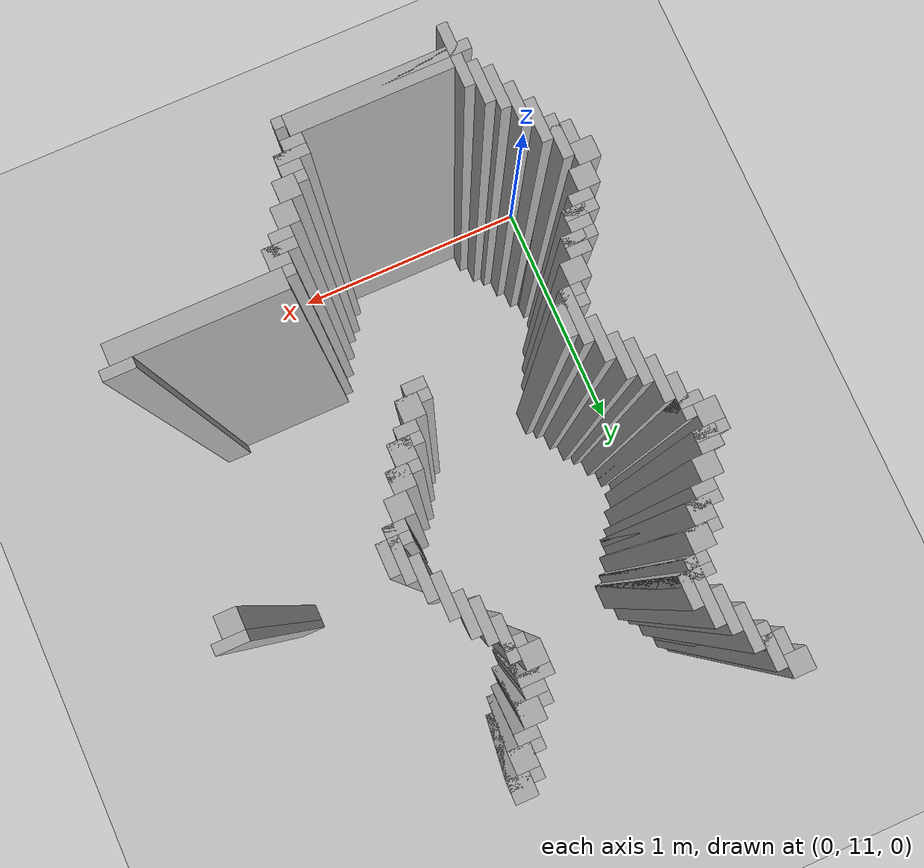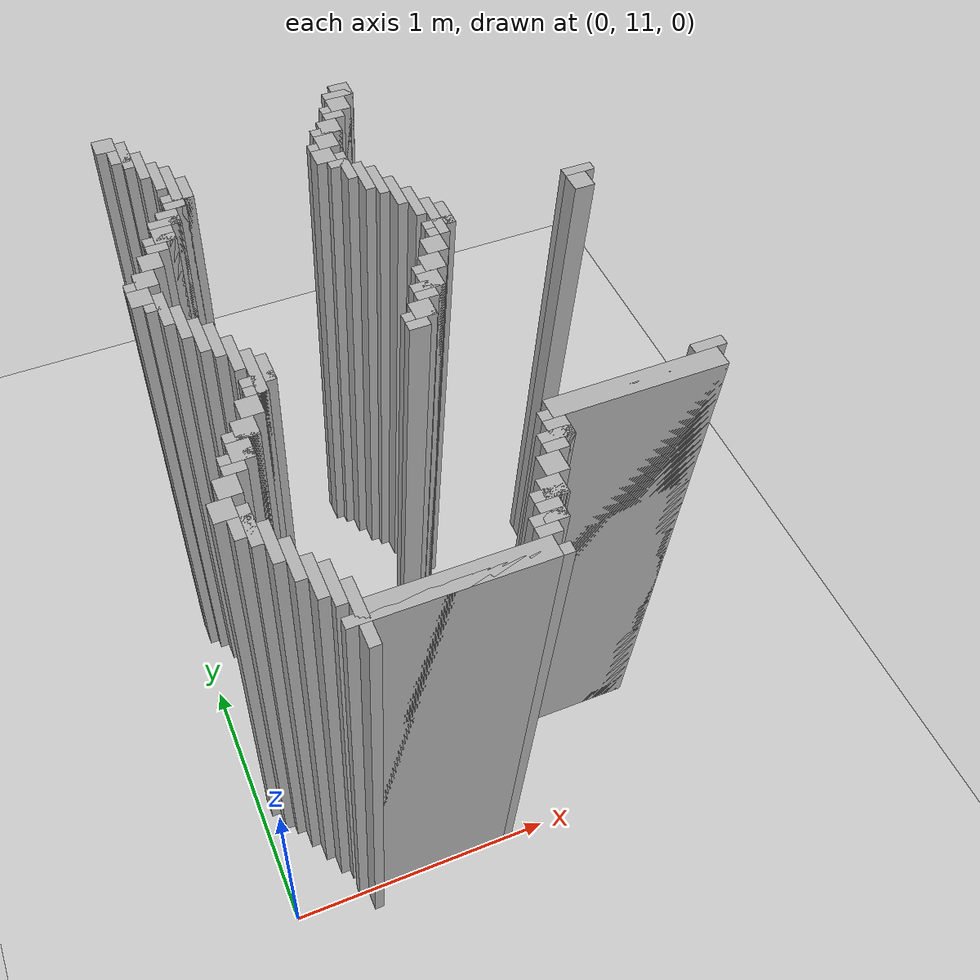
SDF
<sdf version="1.6">
 <world name="slam_world">
  <model name="ground_plane">
   <static>true</static>
   <link name="link">
    <collision name="collision">
     <geometry><plane><normal>0 0 1</normal><size>100 100</size></plane></geometry>
    </collision>
    <visual name="visual">
     <geometry><plane><normal>0 0 1</normal><size>100 100</size></plane></geometry>
     <material>
      <ambient>0.8 0.8 0.8 1</ambient>
      <diffuse>0.8 0.8 0.8 1</diffuse>
      <specular>0.8 0.8 0.8 1</specular>
     </material>
    </visual>
   </link>
  </model>
  <model name="wall_1461">
   <static>true</static>
   <pose>0.13921113689095127 13.016241299303944 1.0 0 0 0</pose>
   <link name="link">
    <collision name="collision">
     <geometry><box><size>0.06960556844547564 0.06960556844547564 2.0</size></box></geometry>
    </collision>
    <visual name="visual">
     <geometry><box><size>0.06960556844547564 0.06960556844547564 2.0</size></box></geometry>
     <material><ambient>0.5 0.5 0.5 1</ambient><diffuse>0.7 0.7 0.7 1</diffuse></material>
    </visual>
   </link>
  </model>
  <model name="wall_1462">
   <static>true</static>
   <pose>0.974477958236659 13.016241299303944 1.0 0 0 0</pose>
   <link name="link">
    <collision name="collision">
     <geometry><box><size>0.06960556844547564 0.06960556844547564 2.0</size></box></geometry>
    </collision>
    <visual name="visual">
     <geometry><box><size>0.06960556844547564 0.06960556844547564 2.0</size></box></geometry>
     <material><ambient>0.5 0.5 0.5 1</ambient><diffuse>0.7 0.7 0.7 1</diffuse></material>
    </visual>
   </link>
  </model>
  <model name="wall_1473">
   <static>true</static>
   <pose>0.191415313225058 12.946635730858468 1.0 0 0 0</pose>
   <link name="link">
    <collision name="collision">
     <geometry><box><size>0.03480278422273782 0.13921113689095127 2.0</size></box></geometry>
    </collision>
    <visual name="visual">
     <geometry><box><size>0.03480278422273782 0.13921113689095127 2.0</size></box></geometry>
     <material><ambient>0.5 0.5 0.5 1</ambient><diffuse>0.7 0.7 0.7 1</diffuse></material>
    </visual>
   </link>
  </model>
  <model name="wall_1474">
   <static>true</static>
   <pose>0.95707656612529 12.998839907192576 1.0 0 0 0</pose>
   <link name="link">
    <collision name="collision">
     <geometry><box><size>0.10440835266821345 0.03480278422273782 2.0</size></box></geometry>
    </collision>
    <visual name="visual">
     <geometry><box><size>0.10440835266821345 0.03480278422273782 2.0</size></box></geometry>
     <material><ambient>0.5 0.5 0.5 1</ambient><diffuse>0.7 0.7 0.7 1</diffuse></material>
    </visual>
   </link>
  </model>
  <model name="wall_1485">
   <static>true</static>
   <pose>0.17401392111368907 12.946635730858468 1.0 0 0 0</pose>
   <link name="link">
    <collision name="collision">
     <geometry><box><size>0.06960556844547564 0.06960556844547564 2.0</size></box></geometry>
    </collision>
    <visual name="visual">
     <geometry><box><size>0.06960556844547564 0.06960556844547564 2.0</size></box></geometry>
     <material><ambient>0.5 0.5 0.5 1</ambient><diffuse>0.7 0.7 0.7 1</diffuse></material>
    </visual>
   </link>
  </model>
  <model name="wall_1486">
   <static>true</static>
   <pose>0.9396751740139211 12.946635730858468 1.0 0 0 0</pose>
   <link name="link">
    <collision name="collision">
     <geometry><box><size>0.06960556844547564 0.06960556844547564 2.0</size></box></geometry>
    </collision>
    <visual name="visual">
     <geometry><box><size>0.06960556844547564 0.06960556844547564 2.0</size></box></geometry>
     <material><ambient>0.5 0.5 0.5 1</ambient><diffuse>0.7 0.7 0.7 1</diffuse></material>
    </visual>
   </link>
  </model>
  <model name="wall_1497">
   <static>true</static>
   <pose>0.2262180974477958 12.877030162412993 1.0 0 0 0</pose>
   <link name="link">
    <collision name="collision">
     <geometry><box><size>0.03480278422273782 0.13921113689095127 2.0</size></box></geometry>
    </collision>
    <visual name="visual">
     <geometry><box><size>0.03480278422273782 0.13921113689095127 2.0</size></box></geometry>
     <material><ambient>0.5 0.5 0.5 1</ambient><diffuse>0.7 0.7 0.7 1</diffuse></material>
    </visual>
   </link>
  </model>
  <model name="wall_1498">
   <static>true</static>
   <pose>0.9222737819025522 12.929234338747099 1.0 0 0 0</pose>
   <link name="link">
    <collision name="collision">
     <geometry><box><size>0.10440835266821345 0.03480278422273782 2.0</size></box></geometry>
    </collision>
    <visual name="visual">
     <geometry><box><size>0.10440835266821345 0.03480278422273782 2.0</size></box></geometry>
     <material><ambient>0.5 0.5 0.5 1</ambient><diffuse>0.7 0.7 0.7 1</diffuse></material>
    </visual>
   </link>
  </model>
  <model name="wall_1509">
   <static>true</static>
   <pose>0.9048723897911832 12.894431554524362 1.0 0 0 0</pose>
   <link name="link">
    <collision name="collision">
     <geometry><box><size>0.06960556844547564 0.03480278422273782 2.0</size></box></geometry>
    </collision>
    <visual name="visual">
     <geometry><box><size>0.06960556844547564 0.03480278422273782 2.0</size></box></geometry>
     <material><ambient>0.5 0.5 0.5 1</ambient><diffuse>0.7 0.7 0.7 1</diffuse></material>
    </visual>
   </link>
  </model>
  <model name="wall_1515">
   <static>true</static>
   <pose>0.2610208816705336 12.807424593967516 1.0 0 0 0</pose>
   <link name="link">
    <collision name="collision">
     <geometry><box><size>0.03480278422273782 0.13921113689095127 2.0</size></box></geometry>
    </collision>
    <visual name="visual">
     <geometry><box><size>0.03480278422273782 0.13921113689095127 2.0</size></box></geometry>
     <material><ambient>0.5 0.5 0.5 1</ambient><diffuse>0.7 0.7 0.7 1</diffuse></material>
    </visual>
   </link>
  </model>
  <model name="wall_1516">
   <static>true</static>
   <pose>0.8700696055684455 12.842227378190255 1.0 0 0 0</pose>
   <link name="link">
    <collision name="collision">
     <geometry><box><size>0.06960556844547564 0.06960556844547564 2.0</size></box></geometry>
    </collision>
    <visual name="visual">
     <geometry><box><size>0.06960556844547564 0.06960556844547564 2.0</size></box></geometry>
     <material><ambient>0.5 0.5 0.5 1</ambient><diffuse>0.7 0.7 0.7 1</diffuse></material>
    </visual>
   </link>
  </model>
  <model name="wall_1527">
   <static>true</static>
   <pose>0.29582366589327147 12.737819025522041 1.0 0 0 0</pose>
   <link name="link">
    <collision name="collision">
     <geometry><box><size>0.03480278422273782 0.2088167053364269 2.0</size></box></geometry>
    </collision>
    <visual name="visual">
     <geometry><box><size>0.03480278422273782 0.2088167053364269 2.0</size></box></geometry>
     <material><ambient>0.5 0.5 0.5 1</ambient><diffuse>0.7 0.7 0.7 1</diffuse></material>
    </visual>
   </link>
  </model>
  <model name="wall_1528">
   <static>true</static>
   <pose>0.8526682134570766 12.824825986078885 1.0 0 0 0</pose>
   <link name="link">
    <collision name="collision">
     <geometry><box><size>0.10440835266821345 0.03480278422273782 2.0</size></box></geometry>
    </collision>
    <visual name="visual">
     <geometry><box><size>0.10440835266821345 0.03480278422273782 2.0</size></box></geometry>
     <material><ambient>0.5 0.5 0.5 1</ambient><diffuse>0.7 0.7 0.7 1</diffuse></material>
    </visual>
   </link>
  </model>
  <model name="wall_1539">
   <static>true</static>
   <pose>0.8352668213457076 12.772621809744779 1.0 0 0 0</pose>
   <link name="link">
    <collision name="collision">
     <geometry><box><size>0.06960556844547564 0.06960556844547564 2.0</size></box></geometry>
    </collision>
    <visual name="visual">
     <geometry><box><size>0.06960556844547564 0.06960556844547564 2.0</size></box></geometry>
     <material><ambient>0.5 0.5 0.5 1</ambient><diffuse>0.7 0.7 0.7 1</diffuse></material>
    </visual>
   </link>
  </model>
  <model name="wall_1545">
   <static>true</static>
   <pose>0.3306264501160093 12.720417633410673 1.0 0 0 0</pose>
   <link name="link">
    <collision name="collision">
     <geometry><box><size>0.03480278422273782 0.10440835266821345 2.0</size></box></geometry>
    </collision>
    <visual name="visual">
     <geometry><box><size>0.03480278422273782 0.10440835266821345 2.0</size></box></geometry>
     <material><ambient>0.5 0.5 0.5 1</ambient><diffuse>0.7 0.7 0.7 1</diffuse></material>
    </visual>
   </link>
  </model>
  <model name="wall_1546">
   <static>true</static>
   <pose>0.8178654292343387 12.75522041763341 1.0 0 0 0</pose>
   <link name="link">
    <collision name="collision">
     <geometry><box><size>0.10440835266821345 0.03480278422273782 2.0</size></box></geometry>
    </collision>
    <visual name="visual">
     <geometry><box><size>0.10440835266821345 0.03480278422273782 2.0</size></box></geometry>
     <material><ambient>0.5 0.5 0.5 1</ambient><diffuse>0.7 0.7 0.7 1</diffuse></material>
    </visual>
   </link>
  </model>
  <model name="wall_1558">
   <static>true</static>
   <pose>0.8004640371229698 12.703016241299304 1.0 0 0 0</pose>
   <link name="link">
    <collision name="collision">
     <geometry><box><size>0.06960556844547564 0.06960556844547564 2.0</size></box></geometry>
    </collision>
    <visual name="visual">
     <geometry><box><size>0.06960556844547564 0.06960556844547564 2.0</size></box></geometry>
     <material><ambient>0.5 0.5 0.5 1</ambient><diffuse>0.7 0.7 0.7 1</diffuse></material>
    </visual>
   </link>
  </model>
  <model name="wall_1569">
   <static>true</static>
   <pose>0.29582366589327147 12.685614849187935 1.0 0 0 0</pose>
   <link name="link">
    <collision name="collision">
     <geometry><box><size>0.10440835266821345 0.03480278422273782 2.0</size></box></geometry>
    </collision>
    <visual name="visual">
     <geometry><box><size>0.10440835266821345 0.03480278422273782 2.0</size></box></geometry>
     <material><ambient>0.5 0.5 0.5 1</ambient><diffuse>0.7 0.7 0.7 1</diffuse></material>
    </visual>
   </link>
  </model>
  <model name="wall_1570">
   <static>true</static>
   <pose>0.8526682134570766 12.633410672853827 1.0 0 0 0</pose>
   <link name="link">
    <collision name="collision">
     <geometry><box><size>0.03480278422273782 0.13921113689095127 2.0</size></box></geometry>
    </collision>
    <visual name="visual">
     <geometry><box><size>0.03480278422273782 0.13921113689095127 2.0</size></box></geometry>
     <material><ambient>0.5 0.5 0.5 1</ambient><diffuse>0.7 0.7 0.7 1</diffuse></material>
    </visual>
   </link>
  </model>
  <model name="wall_1586">
   <static>true</static>
   <pose>0.27842227378190254 12.650812064965196 1.0 0 0 0</pose>
   <link name="link">
    <collision name="collision">
     <geometry><box><size>0.06960556844547564 0.03480278422273782 2.0</size></box></geometry>
    </collision>
    <visual name="visual">
     <geometry><box><size>0.06960556844547564 0.03480278422273782 2.0</size></box></geometry>
     <material><ambient>0.5 0.5 0.5 1</ambient><diffuse>0.7 0.7 0.7 1</diffuse></material>
    </visual>
   </link>
  </model>
  <model name="wall_1587">
   <static>true</static>
   <pose>0.8352668213457076 12.650812064965196 1.0 0 0 0</pose>
   <link name="link">
    <collision name="collision">
     <geometry><box><size>0.06960556844547564 0.03480278422273782 2.0</size></box></geometry>
    </collision>
    <visual name="visual">
     <geometry><box><size>0.06960556844547564 0.03480278422273782 2.0</size></box></geometry>
     <material><ambient>0.5 0.5 0.5 1</ambient><diffuse>0.7 0.7 0.7 1</diffuse></material>
    </visual>
   </link>
  </model>
  <model name="wall_1599">
   <static>true</static>
   <pose>0.24361948955916474 12.59860788863109 1.0 0 0 0</pose>
   <link name="link">
    <collision name="collision">
     <geometry><box><size>0.06960556844547564 0.06960556844547564 2.0</size></box></geometry>
    </collision>
    <visual name="visual">
     <geometry><box><size>0.06960556844547564 0.06960556844547564 2.0</size></box></geometry>
     <material><ambient>0.5 0.5 0.5 1</ambient><diffuse>0.7 0.7 0.7 1</diffuse></material>
    </visual>
   </link>
  </model>
  <model name="wall_1600">
   <static>true</static>
   <pose>0.8874709976798143 12.563805104408353 1.0 0 0 0</pose>
   <link name="link">
    <collision name="collision">
     <geometry><box><size>0.03480278422273782 0.13921113689095127 2.0</size></box></geometry>
    </collision>
    <visual name="visual">
     <geometry><box><size>0.03480278422273782 0.13921113689095127 2.0</size></box></geometry>
     <material><ambient>0.5 0.5 0.5 1</ambient><diffuse>0.7 0.7 0.7 1</diffuse></material>
    </visual>
   </link>
  </model>
  <model name="wall_1616">
   <static>true</static>
   <pose>0.2262180974477958 12.581206496519721 1.0 0 0 0</pose>
   <link name="link">
    <collision name="collision">
     <geometry><box><size>0.10440835266821345 0.03480278422273782 2.0</size></box></geometry>
    </collision>
    <visual name="visual">
     <geometry><box><size>0.10440835266821345 0.03480278422273782 2.0</size></box></geometry>
     <material><ambient>0.5 0.5 0.5 1</ambient><diffuse>0.7 0.7 0.7 1</diffuse></material>
    </visual>
   </link>
  </model>
  <model name="wall_1617">
   <static>true</static>
   <pose>0.9222737819025522 12.529002320185615 1.0 0 0 0</pose>
   <link name="link">
    <collision name="collision">
     <geometry><box><size>0.03480278422273782 0.13921113689095127 2.0</size></box></geometry>
    </collision>
    <visual name="visual">
     <geometry><box><size>0.03480278422273782 0.13921113689095127 2.0</size></box></geometry>
     <material><ambient>0.5 0.5 0.5 1</ambient><diffuse>0.7 0.7 0.7 1</diffuse></material>
    </visual>
   </link>
  </model>
  <model name="wall_1633">
   <static>true</static>
   <pose>0.2088167053364269 12.529002320185615 1.0 0 0 0</pose>
   <link name="link">
    <collision name="collision">
     <geometry><box><size>0.06960556844547564 0.06960556844547564 2.0</size></box></geometry>
    </collision>
    <visual name="visual">
     <geometry><box><size>0.06960556844547564 0.06960556844547564 2.0</size></box></geometry>
     <material><ambient>0.5 0.5 0.5 1</ambient><diffuse>0.7 0.7 0.7 1</diffuse></material>
    </visual>
   </link>
  </model>
  <model name="wall_1644">
   <static>true</static>
   <pose>0.191415313225058 12.511600928074245 1.0 0 0 0</pose>
   <link name="link">
    <collision name="collision">
     <geometry><box><size>0.10440835266821345 0.03480278422273782 2.0</size></box></geometry>
    </collision>
    <visual name="visual">
     <geometry><box><size>0.10440835266821345 0.03480278422273782 2.0</size></box></geometry>
     <material><ambient>0.5 0.5 0.5 1</ambient><diffuse>0.7 0.7 0.7 1</diffuse></material>
    </visual>
   </link>
  </model>
  <model name="wall_1645">
   <static>true</static>
   <pose>0.95707656612529 12.459396751740138 1.0 0 0 0</pose>
   <link name="link">
    <collision name="collision">
     <geometry><box><size>0.03480278422273782 0.13921113689095127 2.0</size></box></geometry>
    </collision>
    <visual name="visual">
     <geometry><box><size>0.03480278422273782 0.13921113689095127 2.0</size></box></geometry>
     <material><ambient>0.5 0.5 0.5 1</ambient><diffuse>0.7 0.7 0.7 1</diffuse></material>
    </visual>
   </link>
  </model>
  <model name="wall_1661">
   <static>true</static>
   <pose>0.17401392111368907 12.476798143851507 1.0 0 0 0</pose>
   <link name="link">
    <collision name="collision">
     <geometry><box><size>0.06960556844547564 0.03480278422273782 2.0</size></box></geometry>
    </collision>
    <visual name="visual">
     <geometry><box><size>0.06960556844547564 0.03480278422273782 2.0</size></box></geometry>
     <material><ambient>0.5 0.5 0.5 1</ambient><diffuse>0.7 0.7 0.7 1</diffuse></material>
    </visual>
   </link>
  </model>
  <model name="wall_1670">
   <static>true</static>
   <pose>0.13921113689095127 12.424593967517401 1.0 0 0 0</pose>
   <link name="link">
    <collision name="collision">
     <geometry><box><size>0.06960556844547564 0.06960556844547564 2.0</size></box></geometry>
    </collision>
    <visual name="visual">
     <geometry><box><size>0.06960556844547564 0.06960556844547564 2.0</size></box></geometry>
     <material><ambient>0.5 0.5 0.5 1</ambient><diffuse>0.7 0.7 0.7 1</diffuse></material>
    </visual>
   </link>
  </model>
  <model name="wall_1671">
   <static>true</static>
   <pose>0.9918793503480278 12.389791183294664 1.0 0 0 0</pose>
   <link name="link">
    <collision name="collision">
     <geometry><box><size>0.03480278422273782 0.13921113689095127 2.0</size></box></geometry>
    </collision>
    <visual name="visual">
     <geometry><box><size>0.03480278422273782 0.13921113689095127 2.0</size></box></geometry>
     <material><ambient>0.5 0.5 0.5 1</ambient><diffuse>0.7 0.7 0.7 1</diffuse></material>
    </visual>
   </link>
  </model>
  <model name="wall_1687">
   <static>true</static>
   <pose>0.10440835266821345 12.354988399071924 1.0 0 0 0</pose>
   <link name="link">
    <collision name="collision">
     <geometry><box><size>0.06960556844547564 0.06960556844547564 2.0</size></box></geometry>
    </collision>
    <visual name="visual">
     <geometry><box><size>0.06960556844547564 0.06960556844547564 2.0</size></box></geometry>
     <material><ambient>0.5 0.5 0.5 1</ambient><diffuse>0.7 0.7 0.7 1</diffuse></material>
    </visual>
   </link>
  </model>
  <model name="wall_1688">
   <static>true</static>
   <pose>1.0266821345707655 12.302784222737818 1.0 0 0 0</pose>
   <link name="link">
    <collision name="collision">
     <geometry><box><size>0.03480278422273782 0.17401392111368907 2.0</size></box></geometry>
    </collision>
    <visual name="visual">
     <geometry><box><size>0.03480278422273782 0.17401392111368907 2.0</size></box></geometry>
     <material><ambient>0.5 0.5 0.5 1</ambient><diffuse>0.7 0.7 0.7 1</diffuse></material>
    </visual>
   </link>
  </model>
  <model name="wall_1704">
   <static>true</static>
   <pose>0.08700696055684454 12.337587006960556 1.0 0 0 0</pose>
   <link name="link">
    <collision name="collision">
     <geometry><box><size>0.10440835266821345 0.03480278422273782 2.0</size></box></geometry>
    </collision>
    <visual name="visual">
     <geometry><box><size>0.10440835266821345 0.03480278422273782 2.0</size></box></geometry>
     <material><ambient>0.5 0.5 0.5 1</ambient><diffuse>0.7 0.7 0.7 1</diffuse></material>
    </visual>
   </link>
  </model>
  <model name="wall_1705">
   <static>true</static>
   <pose>1.0614849187935034 12.302784222737818 1.0 0 0 0</pose>
   <link name="link">
    <collision name="collision">
     <geometry><box><size>0.03480278422273782 0.10440835266821345 2.0</size></box></geometry>
    </collision>
    <visual name="visual">
     <geometry><box><size>0.03480278422273782 0.10440835266821345 2.0</size></box></geometry>
     <material><ambient>0.5 0.5 0.5 1</ambient><diffuse>0.7 0.7 0.7 1</diffuse></material>
    </visual>
   </link>
  </model>
  <model name="wall_1706">
   <static>true</static>
   <pose>1.548723897911833 12.337587006960556 1.0 0 0 0</pose>
   <link name="link">
    <collision name="collision">
     <geometry><box><size>0.10440835266821345 0.03480278422273782 2.0</size></box></geometry>
    </collision>
    <visual name="visual">
     <geometry><box><size>0.10440835266821345 0.03480278422273782 2.0</size></box></geometry>
     <material><ambient>0.5 0.5 0.5 1</ambient><diffuse>0.7 0.7 0.7 1</diffuse></material>
    </visual>
   </link>
  </model>
  <model name="wall_1719">
   <static>true</static>
   <pose>0.06960556844547564 12.28538283062645 1.0 0 0 0</pose>
   <link name="link">
    <collision name="collision">
     <geometry><box><size>0.06960556844547564 0.06960556844547564 2.0</size></box></geometry>
    </collision>
    <visual name="visual">
     <geometry><box><size>0.06960556844547564 0.06960556844547564 2.0</size></box></geometry>
     <material><ambient>0.5 0.5 0.5 1</ambient><diffuse>0.7 0.7 0.7 1</diffuse></material>
    </visual>
   </link>
  </model>
  <model name="wall_1720">
   <static>true</static>
   <pose>1.531322505800464 12.28538283062645 1.0 0 0 0</pose>
   <link name="link">
    <collision name="collision">
     <geometry><box><size>0.06960556844547564 0.06960556844547564 2.0</size></box></geometry>
    </collision>
    <visual name="visual">
     <geometry><box><size>0.06960556844547564 0.06960556844547564 2.0</size></box></geometry>
     <material><ambient>0.5 0.5 0.5 1</ambient><diffuse>0.7 0.7 0.7 1</diffuse></material>
    </visual>
   </link>
  </model>
  <model name="wall_1731">
   <static>true</static>
   <pose>0.12180974477958237 12.215777262180975 1.0 0 0 0</pose>
   <link name="link">
    <collision name="collision">
     <geometry><box><size>0.03480278422273782 0.13921113689095127 2.0</size></box></geometry>
    </collision>
    <visual name="visual">
     <geometry><box><size>0.03480278422273782 0.13921113689095127 2.0</size></box></geometry>
     <material><ambient>0.5 0.5 0.5 1</ambient><diffuse>0.7 0.7 0.7 1</diffuse></material>
    </visual>
   </link>
  </model>
  <model name="wall_1732">
   <static>true</static>
   <pose>1.0266821345707655 12.267981438515081 1.0 0 0 0</pose>
   <link name="link">
    <collision name="collision">
     <geometry><box><size>0.10440835266821345 0.03480278422273782 2.0</size></box></geometry>
    </collision>
    <visual name="visual">
     <geometry><box><size>0.10440835266821345 0.03480278422273782 2.0</size></box></geometry>
     <material><ambient>0.5 0.5 0.5 1</ambient><diffuse>0.7 0.7 0.7 1</diffuse></material>
    </visual>
   </link>
  </model>
  <model name="wall_1749">
   <static>true</static>
   <pose>0.10440835266821345 12.233178654292344 1.0 0 0 0</pose>
   <link name="link">
    <collision name="collision">
     <geometry><box><size>0.06960556844547564 0.03480278422273782 2.0</size></box></geometry>
    </collision>
    <visual name="visual">
     <geometry><box><size>0.06960556844547564 0.03480278422273782 2.0</size></box></geometry>
     <material><ambient>0.5 0.5 0.5 1</ambient><diffuse>0.7 0.7 0.7 1</diffuse></material>
    </visual>
   </link>
  </model>
  <model name="wall_1750">
   <static>true</static>
   <pose>1.0092807424593968 12.233178654292344 1.0 0 0 0</pose>
   <link name="link">
    <collision name="collision">
     <geometry><box><size>0.06960556844547564 0.03480278422273782 2.0</size></box></geometry>
    </collision>
    <visual name="visual">
     <geometry><box><size>0.06960556844547564 0.03480278422273782 2.0</size></box></geometry>
     <material><ambient>0.5 0.5 0.5 1</ambient><diffuse>0.7 0.7 0.7 1</diffuse></material>
    </visual>
   </link>
  </model>
  <model name="wall_1765">
   <static>true</static>
   <pose>0.15661252900232017 12.146171693735498 1.0 0 0 0</pose>
   <link name="link">
    <collision name="collision">
     <geometry><box><size>0.03480278422273782 0.13921113689095127 2.0</size></box></geometry>
    </collision>
    <visual name="visual">
     <geometry><box><size>0.03480278422273782 0.13921113689095127 2.0</size></box></geometry>
     <material><ambient>0.5 0.5 0.5 1</ambient><diffuse>0.7 0.7 0.7 1</diffuse></material>
    </visual>
   </link>
  </model>
  <model name="wall_1766">
   <static>true</static>
   <pose>0.974477958236659 12.180974477958236 1.0 0 0 0</pose>
   <link name="link">
    <collision name="collision">
     <geometry><box><size>0.06960556844547564 0.06960556844547564 2.0</size></box></geometry>
    </collision>
    <visual name="visual">
     <geometry><box><size>0.06960556844547564 0.06960556844547564 2.0</size></box></geometry>
     <material><ambient>0.5 0.5 0.5 1</ambient><diffuse>0.7 0.7 0.7 1</diffuse></material>
    </visual>
   </link>
  </model>
  <model name="wall_1781">
   <static>true</static>
   <pose>0.191415313225058 12.076566125290023 1.0 0 0 0</pose>
   <link name="link">
    <collision name="collision">
     <geometry><box><size>0.03480278422273782 0.13921113689095127 2.0</size></box></geometry>
    </collision>
    <visual name="visual">
     <geometry><box><size>0.03480278422273782 0.13921113689095127 2.0</size></box></geometry>
     <material><ambient>0.5 0.5 0.5 1</ambient><diffuse>0.7 0.7 0.7 1</diffuse></material>
    </visual>
   </link>
  </model>
  <model name="wall_1782">
   <static>true</static>
   <pose>0.9396751740139211 12.11136890951276 1.0 0 0 0</pose>
   <link name="link">
    <collision name="collision">
     <geometry><box><size>0.06960556844547564 0.06960556844547564 2.0</size></box></geometry>
    </collision>
    <visual name="visual">
     <geometry><box><size>0.06960556844547564 0.06960556844547564 2.0</size></box></geometry>
     <material><ambient>0.5 0.5 0.5 1</ambient><diffuse>0.7 0.7 0.7 1</diffuse></material>
    </visual>
   </link>
  </model>
  <model name="wall_1797">
   <static>true</static>
   <pose>0.2262180974477958 12.041763341067284 1.0 0 0 0</pose>
   <link name="link">
    <collision name="collision">
     <geometry><box><size>0.03480278422273782 0.13921113689095127 2.0</size></box></geometry>
    </collision>
    <visual name="visual">
     <geometry><box><size>0.03480278422273782 0.13921113689095127 2.0</size></box></geometry>
     <material><ambient>0.5 0.5 0.5 1</ambient><diffuse>0.7 0.7 0.7 1</diffuse></material>
    </visual>
   </link>
  </model>
  <model name="wall_1798">
   <static>true</static>
   <pose>0.9222737819025522 12.093967517401392 1.0 0 0 0</pose>
   <link name="link">
    <collision name="collision">
     <geometry><box><size>0.10440835266821345 0.03480278422273782 2.0</size></box></geometry>
    </collision>
    <visual name="visual">
     <geometry><box><size>0.10440835266821345 0.03480278422273782 2.0</size></box></geometry>
     <material><ambient>0.5 0.5 0.5 1</ambient><diffuse>0.7 0.7 0.7 1</diffuse></material>
    </visual>
   </link>
  </model>
  <model name="wall_1813">
   <static>true</static>
   <pose>0.9048723897911832 12.041763341067284 1.0 0 0 0</pose>
   <link name="link">
    <collision name="collision">
     <geometry><box><size>0.06960556844547564 0.06960556844547564 2.0</size></box></geometry>
    </collision>
    <visual name="visual">
     <geometry><box><size>0.06960556844547564 0.06960556844547564 2.0</size></box></geometry>
     <material><ambient>0.5 0.5 0.5 1</ambient><diffuse>0.7 0.7 0.7 1</diffuse></material>
    </visual>
   </link>
  </model>
  <model name="wall_1823">
   <static>true</static>
   <pose>0.2610208816705336 11.97215777262181 1.0 0 0 0</pose>
   <link name="link">
    <collision name="collision">
     <geometry><box><size>0.03480278422273782 0.13921113689095127 2.0</size></box></geometry>
    </collision>
    <visual name="visual">
     <geometry><box><size>0.03480278422273782 0.13921113689095127 2.0</size></box></geometry>
     <material><ambient>0.5 0.5 0.5 1</ambient><diffuse>0.7 0.7 0.7 1</diffuse></material>
    </visual>
   </link>
  </model>
  <model name="wall_1824">
   <static>true</static>
   <pose>0.8874709976798143 12.024361948955915 1.0 0 0 0</pose>
   <link name="link">
    <collision name="collision">
     <geometry><box><size>0.10440835266821345 0.03480278422273782 2.0</size></box></geometry>
    </collision>
    <visual name="visual">
     <geometry><box><size>0.10440835266821345 0.03480278422273782 2.0</size></box></geometry>
     <material><ambient>0.5 0.5 0.5 1</ambient><diffuse>0.7 0.7 0.7 1</diffuse></material>
    </visual>
   </link>
  </model>
  <model name="wall_1839">
   <static>true</static>
   <pose>0.8700696055684455 11.989559164733178 1.0 0 0 0</pose>
   <link name="link">
    <collision name="collision">
     <geometry><box><size>0.06960556844547564 0.03480278422273782 2.0</size></box></geometry>
    </collision>
    <visual name="visual">
     <geometry><box><size>0.06960556844547564 0.03480278422273782 2.0</size></box></geometry>
     <material><ambient>0.5 0.5 0.5 1</ambient><diffuse>0.7 0.7 0.7 1</diffuse></material>
    </visual>
   </link>
  </model>
  <model name="wall_1847">
   <static>true</static>
   <pose>0.29582366589327147 11.885150812064964 1.0 0 0 0</pose>
   <link name="link">
    <collision name="collision">
     <geometry><box><size>0.03480278422273782 0.17401392111368907 2.0</size></box></geometry>
    </collision>
    <visual name="visual">
     <geometry><box><size>0.03480278422273782 0.17401392111368907 2.0</size></box></geometry>
     <material><ambient>0.5 0.5 0.5 1</ambient><diffuse>0.7 0.7 0.7 1</diffuse></material>
    </visual>
   </link>
  </model>
  <model name="wall_1848">
   <static>true</static>
   <pose>0.8352668213457076 11.937354988399072 1.0 0 0 0</pose>
   <link name="link">
    <collision name="collision">
     <geometry><box><size>0.06960556844547564 0.06960556844547564 2.0</size></box></geometry>
    </collision>
    <visual name="visual">
     <geometry><box><size>0.06960556844547564 0.06960556844547564 2.0</size></box></geometry>
     <material><ambient>0.5 0.5 0.5 1</ambient><diffuse>0.7 0.7 0.7 1</diffuse></material>
    </visual>
   </link>
  </model>
  <model name="wall_1863">
   <static>true</static>
   <pose>0.3306264501160093 11.885150812064964 1.0 0 0 0</pose>
   <link name="link">
    <collision name="collision">
     <geometry><box><size>0.03480278422273782 0.10440835266821345 2.0</size></box></geometry>
    </collision>
    <visual name="visual">
     <geometry><box><size>0.03480278422273782 0.10440835266821345 2.0</size></box></geometry>
     <material><ambient>0.5 0.5 0.5 1</ambient><diffuse>0.7 0.7 0.7 1</diffuse></material>
    </visual>
   </link>
  </model>
  <model name="wall_1864">
   <static>true</static>
   <pose>0.8178654292343387 11.919953596287703 1.0 0 0 0</pose>
   <link name="link">
    <collision name="collision">
     <geometry><box><size>0.10440835266821345 0.03480278422273782 2.0</size></box></geometry>
    </collision>
    <visual name="visual">
     <geometry><box><size>0.10440835266821345 0.03480278422273782 2.0</size></box></geometry>
     <material><ambient>0.5 0.5 0.5 1</ambient><diffuse>0.7 0.7 0.7 1</diffuse></material>
    </visual>
   </link>
  </model>
  <model name="wall_1879">
   <static>true</static>
   <pose>0.8004640371229698 11.885150812064964 1.0 0 0 0</pose>
   <link name="link">
    <collision name="collision">
     <geometry><box><size>0.06960556844547564 0.03480278422273782 2.0</size></box></geometry>
    </collision>
    <visual name="visual">
     <geometry><box><size>0.06960556844547564 0.03480278422273782 2.0</size></box></geometry>
     <material><ambient>0.5 0.5 0.5 1</ambient><diffuse>0.7 0.7 0.7 1</diffuse></material>
    </visual>
   </link>
  </model>
  <model name="wall_1890">
   <static>true</static>
   <pose>0.29582366589327147 11.850348027842227 1.0 0 0 0</pose>
   <link name="link">
    <collision name="collision">
     <geometry><box><size>0.10440835266821345 0.03480278422273782 2.0</size></box></geometry>
    </collision>
    <visual name="visual">
     <geometry><box><size>0.10440835266821345 0.03480278422273782 2.0</size></box></geometry>
     <material><ambient>0.5 0.5 0.5 1</ambient><diffuse>0.7 0.7 0.7 1</diffuse></material>
    </visual>
   </link>
  </model>
  <model name="wall_1904">
   <static>true</static>
   <pose>0.27842227378190254 11.81554524361949 1.0 0 0 0</pose>
   <link name="link">
    <collision name="collision">
     <geometry><box><size>0.06960556844547564 0.03480278422273782 2.0</size></box></geometry>
    </collision>
    <visual name="visual">
     <geometry><box><size>0.06960556844547564 0.03480278422273782 2.0</size></box></geometry>
     <material><ambient>0.5 0.5 0.5 1</ambient><diffuse>0.7 0.7 0.7 1</diffuse></material>
    </visual>
   </link>
  </model>
  <model name="wall_1920">
   <static>true</static>
   <pose>0.24361948955916474 11.763341067285383 1.0 0 0 0</pose>
   <link name="link">
    <collision name="collision">
     <geometry><box><size>0.06960556844547564 0.06960556844547564 2.0</size></box></geometry>
    </collision>
    <visual name="visual">
     <geometry><box><size>0.06960556844547564 0.06960556844547564 2.0</size></box></geometry>
     <material><ambient>0.5 0.5 0.5 1</ambient><diffuse>0.7 0.7 0.7 1</diffuse></material>
    </visual>
   </link>
  </model>
  <model name="wall_1936">
   <static>true</static>
   <pose>0.2088167053364269 11.693735498839906 1.0 0 0 0</pose>
   <link name="link">
    <collision name="collision">
     <geometry><box><size>0.06960556844547564 0.06960556844547564 2.0</size></box></geometry>
    </collision>
    <visual name="visual">
     <geometry><box><size>0.06960556844547564 0.06960556844547564 2.0</size></box></geometry>
     <material><ambient>0.5 0.5 0.5 1</ambient><diffuse>0.7 0.7 0.7 1</diffuse></material>
    </visual>
   </link>
  </model>
  <model name="wall_1952">
   <static>true</static>
   <pose>0.191415313225058 11.676334106728538 1.0 0 0 0</pose>
   <link name="link">
    <collision name="collision">
     <geometry><box><size>0.10440835266821345 0.03480278422273782 2.0</size></box></geometry>
    </collision>
    <visual name="visual">
     <geometry><box><size>0.10440835266821345 0.03480278422273782 2.0</size></box></geometry>
     <material><ambient>0.5 0.5 0.5 1</ambient><diffuse>0.7 0.7 0.7 1</diffuse></material>
    </visual>
   </link>
  </model>
  <model name="wall_1968">
   <static>true</static>
   <pose>0.17401392111368907 11.624129930394432 1.0 0 0 0</pose>
   <link name="link">
    <collision name="collision">
     <geometry><box><size>0.06960556844547564 0.06960556844547564 2.0</size></box></geometry>
    </collision>
    <visual name="visual">
     <geometry><box><size>0.06960556844547564 0.06960556844547564 2.0</size></box></geometry>
     <material><ambient>0.5 0.5 0.5 1</ambient><diffuse>0.7 0.7 0.7 1</diffuse></material>
    </visual>
   </link>
  </model>
  <model name="wall_1978">
   <static>true</static>
   <pose>0.15661252900232017 11.606728538283063 1.0 0 0 0</pose>
   <link name="link">
    <collision name="collision">
     <geometry><box><size>0.10440835266821345 0.03480278422273782 2.0</size></box></geometry>
    </collision>
    <visual name="visual">
     <geometry><box><size>0.10440835266821345 0.03480278422273782 2.0</size></box></geometry>
     <material><ambient>0.5 0.5 0.5 1</ambient><diffuse>0.7 0.7 0.7 1</diffuse></material>
    </visual>
   </link>
  </model>
  <model name="wall_1994">
   <static>true</static>
   <pose>0.13921113689095127 11.571925754060324 1.0 0 0 0</pose>
   <link name="link">
    <collision name="collision">
     <geometry><box><size>0.06960556844547564 0.03480278422273782 2.0</size></box></geometry>
    </collision>
    <visual name="visual">
     <geometry><box><size>0.06960556844547564 0.03480278422273782 2.0</size></box></geometry>
     <material><ambient>0.5 0.5 0.5 1</ambient><diffuse>0.7 0.7 0.7 1</diffuse></material>
    </visual>
   </link>
  </model>
  <model name="wall_2001">
   <static>true</static>
   <pose>0.10440835266821345 11.519721577726218 1.0 0 0 0</pose>
   <link name="link">
    <collision name="collision">
     <geometry><box><size>0.06960556844547564 0.06960556844547564 2.0</size></box></geometry>
    </collision>
    <visual name="visual">
     <geometry><box><size>0.06960556844547564 0.06960556844547564 2.0</size></box></geometry>
     <material><ambient>0.5 0.5 0.5 1</ambient><diffuse>0.7 0.7 0.7 1</diffuse></material>
    </visual>
   </link>
  </model>
  <model name="wall_2017">
   <static>true</static>
   <pose>1.548723897911833 11.502320185614849 1.0 0 0 0</pose>
   <link name="link">
    <collision name="collision">
     <geometry><box><size>0.10440835266821345 0.03480278422273782 2.0</size></box></geometry>
    </collision>
    <visual name="visual">
     <geometry><box><size>0.10440835266821345 0.03480278422273782 2.0</size></box></geometry>
     <material><ambient>0.5 0.5 0.5 1</ambient><diffuse>0.7 0.7 0.7 1</diffuse></material>
    </visual>
   </link>
  </model>
  <model name="wall_2032">
   <static>true</static>
   <pose>0.06960556844547564 11.450116009280743 1.0 0 0 0</pose>
   <link name="link">
    <collision name="collision">
     <geometry><box><size>0.06960556844547564 0.06960556844547564 2.0</size></box></geometry>
    </collision>
    <visual name="visual">
     <geometry><box><size>0.06960556844547564 0.06960556844547564 2.0</size></box></geometry>
     <material><ambient>0.5 0.5 0.5 1</ambient><diffuse>0.7 0.7 0.7 1</diffuse></material>
    </visual>
   </link>
  </model>
  <model name="wall_2033">
   <static>true</static>
   <pose>1.2877030162412992 11.450116009280743 1.0 0 0 0</pose>
   <link name="link">
    <collision name="collision">
     <geometry><box><size>0.5568445475638051 0.06960556844547564 2.0</size></box></geometry>
    </collision>
    <visual name="visual">
     <geometry><box><size>0.5568445475638051 0.06960556844547564 2.0</size></box></geometry>
     <material><ambient>0.5 0.5 0.5 1</ambient><diffuse>0.7 0.7 0.7 1</diffuse></material>
    </visual>
   </link>
  </model>
  <model name="wall_2043">
   <static>true</static>
   <pose>0.12180974477958237 11.380510440835266 1.0 0 0 0</pose>
   <link name="link">
    <collision name="collision">
     <geometry><box><size>0.03480278422273782 0.13921113689095127 2.0</size></box></geometry>
    </collision>
    <visual name="visual">
     <geometry><box><size>0.03480278422273782 0.13921113689095127 2.0</size></box></geometry>
     <material><ambient>0.5 0.5 0.5 1</ambient><diffuse>0.7 0.7 0.7 1</diffuse></material>
    </visual>
   </link>
  </model>
  <model name="wall_2044">
   <static>true</static>
   <pose>1.2703016241299303 11.432714617169372 1.0 0 0 0</pose>
   <link name="link">
    <collision name="collision">
     <geometry><box><size>0.5916473317865429 0.03480278422273782 2.0</size></box></geometry>
    </collision>
    <visual name="visual">
     <geometry><box><size>0.5916473317865429 0.03480278422273782 2.0</size></box></geometry>
     <material><ambient>0.5 0.5 0.5 1</ambient><diffuse>0.7 0.7 0.7 1</diffuse></material>
    </visual>
   </link>
  </model>
  <model name="wall_2054">
   <static>true</static>
   <pose>0.10440835266821345 11.380510440835266 1.0 0 0 0</pose>
   <link name="link">
    <collision name="collision">
     <geometry><box><size>0.06960556844547564 0.06960556844547564 2.0</size></box></geometry>
    </collision>
    <visual name="visual">
     <geometry><box><size>0.06960556844547564 0.06960556844547564 2.0</size></box></geometry>
     <material><ambient>0.5 0.5 0.5 1</ambient><diffuse>0.7 0.7 0.7 1</diffuse></material>
    </visual>
   </link>
  </model>
  <model name="wall_2055">
   <static>true</static>
   <pose>1.0092807424593968 11.380510440835266 1.0 0 0 0</pose>
   <link name="link">
    <collision name="collision">
     <geometry><box><size>0.06960556844547564 0.06960556844547564 2.0</size></box></geometry>
    </collision>
    <visual name="visual">
     <geometry><box><size>0.06960556844547564 0.06960556844547564 2.0</size></box></geometry>
     <material><ambient>0.5 0.5 0.5 1</ambient><diffuse>0.7 0.7 0.7 1</diffuse></material>
    </visual>
   </link>
  </model>
  <model name="wall_2066">
   <static>true</static>
   <pose>0.15661252900232017 11.310904872389791 1.0 0 0 0</pose>
   <link name="link">
    <collision name="collision">
     <geometry><box><size>0.03480278422273782 0.13921113689095127 2.0</size></box></geometry>
    </collision>
    <visual name="visual">
     <geometry><box><size>0.03480278422273782 0.13921113689095127 2.0</size></box></geometry>
     <material><ambient>0.5 0.5 0.5 1</ambient><diffuse>0.7 0.7 0.7 1</diffuse></material>
    </visual>
   </link>
  </model>
  <model name="wall_2067">
   <static>true</static>
   <pose>0.9918793503480278 11.363109048723897 1.0 0 0 0</pose>
   <link name="link">
    <collision name="collision">
     <geometry><box><size>0.10440835266821345 0.03480278422273782 2.0</size></box></geometry>
    </collision>
    <visual name="visual">
     <geometry><box><size>0.10440835266821345 0.03480278422273782 2.0</size></box></geometry>
     <material><ambient>0.5 0.5 0.5 1</ambient><diffuse>0.7 0.7 0.7 1</diffuse></material>
    </visual>
   </link>
  </model>
  <model name="wall_2078">
   <static>true</static>
   <pose>0.974477958236659 11.32830626450116 1.0 0 0 0</pose>
   <link name="link">
    <collision name="collision">
     <geometry><box><size>0.06960556844547564 0.03480278422273782 2.0</size></box></geometry>
    </collision>
    <visual name="visual">
     <geometry><box><size>0.06960556844547564 0.03480278422273782 2.0</size></box></geometry>
     <material><ambient>0.5 0.5 0.5 1</ambient><diffuse>0.7 0.7 0.7 1</diffuse></material>
    </visual>
   </link>
  </model>
  <model name="wall_2086">
   <static>true</static>
   <pose>0.191415313225058 11.241299303944315 1.0 0 0 0</pose>
   <link name="link">
    <collision name="collision">
     <geometry><box><size>0.03480278422273782 0.13921113689095127 2.0</size></box></geometry>
    </collision>
    <visual name="visual">
     <geometry><box><size>0.03480278422273782 0.13921113689095127 2.0</size></box></geometry>
     <material><ambient>0.5 0.5 0.5 1</ambient><diffuse>0.7 0.7 0.7 1</diffuse></material>
    </visual>
   </link>
  </model>
  <model name="wall_2087">
   <static>true</static>
   <pose>0.9396751740139211 11.276102088167052 1.0 0 0 0</pose>
   <link name="link">
    <collision name="collision">
     <geometry><box><size>0.06960556844547564 0.06960556844547564 2.0</size></box></geometry>
    </collision>
    <visual name="visual">
     <geometry><box><size>0.06960556844547564 0.06960556844547564 2.0</size></box></geometry>
     <material><ambient>0.5 0.5 0.5 1</ambient><diffuse>0.7 0.7 0.7 1</diffuse></material>
    </visual>
   </link>
  </model>
  <model name="wall_2098">
   <static>true</static>
   <pose>0.2262180974477958 11.17169373549884 1.0 0 0 0</pose>
   <link name="link">
    <collision name="collision">
     <geometry><box><size>0.03480278422273782 0.13921113689095127 2.0</size></box></geometry>
    </collision>
    <visual name="visual">
     <geometry><box><size>0.03480278422273782 0.13921113689095127 2.0</size></box></geometry>
     <material><ambient>0.5 0.5 0.5 1</ambient><diffuse>0.7 0.7 0.7 1</diffuse></material>
    </visual>
   </link>
  </model>
  <model name="wall_2099">
   <static>true</static>
   <pose>0.9048723897911832 11.206496519721577 1.0 0 0 0</pose>
   <link name="link">
    <collision name="collision">
     <geometry><box><size>0.06960556844547564 0.06960556844547564 2.0</size></box></geometry>
    </collision>
    <visual name="visual">
     <geometry><box><size>0.06960556844547564 0.06960556844547564 2.0</size></box></geometry>
     <material><ambient>0.5 0.5 0.5 1</ambient><diffuse>0.7 0.7 0.7 1</diffuse></material>
    </visual>
   </link>
  </model>
  <model name="wall_2110">
   <static>true</static>
   <pose>0.2610208816705336 11.1368909512761 1.0 0 0 0</pose>
   <link name="link">
    <collision name="collision">
     <geometry><box><size>0.03480278422273782 0.13921113689095127 2.0</size></box></geometry>
    </collision>
    <visual name="visual">
     <geometry><box><size>0.03480278422273782 0.13921113689095127 2.0</size></box></geometry>
     <material><ambient>0.5 0.5 0.5 1</ambient><diffuse>0.7 0.7 0.7 1</diffuse></material>
    </visual>
   </link>
  </model>
  <model name="wall_2111">
   <static>true</static>
   <pose>0.8874709976798143 11.189095127610209 1.0 0 0 0</pose>
   <link name="link">
    <collision name="collision">
     <geometry><box><size>0.10440835266821345 0.03480278422273782 2.0</size></box></geometry>
    </collision>
    <visual name="visual">
     <geometry><box><size>0.10440835266821345 0.03480278422273782 2.0</size></box></geometry>
     <material><ambient>0.5 0.5 0.5 1</ambient><diffuse>0.7 0.7 0.7 1</diffuse></material>
    </visual>
   </link>
  </model>
  <model name="wall_2122">
   <static>true</static>
   <pose>0.8700696055684455 11.1368909512761 1.0 0 0 0</pose>
   <link name="link">
    <collision name="collision">
     <geometry><box><size>0.06960556844547564 0.06960556844547564 2.0</size></box></geometry>
    </collision>
    <visual name="visual">
     <geometry><box><size>0.06960556844547564 0.06960556844547564 2.0</size></box></geometry>
     <material><ambient>0.5 0.5 0.5 1</ambient><diffuse>0.7 0.7 0.7 1</diffuse></material>
    </visual>
   </link>
  </model>
  <model name="wall_2129">
   <static>true</static>
   <pose>0.29582366589327147 11.032482598607888 1.0 0 0 0</pose>
   <link name="link">
    <collision name="collision">
     <geometry><box><size>0.03480278422273782 0.2088167053364269 2.0</size></box></geometry>
    </collision>
    <visual name="visual">
     <geometry><box><size>0.03480278422273782 0.2088167053364269 2.0</size></box></geometry>
     <material><ambient>0.5 0.5 0.5 1</ambient><diffuse>0.7 0.7 0.7 1</diffuse></material>
    </visual>
   </link>
  </model>
  <model name="wall_2130">
   <static>true</static>
   <pose>0.8526682134570766 11.119489559164732 1.0 0 0 0</pose>
   <link name="link">
    <collision name="collision">
     <geometry><box><size>0.10440835266821345 0.03480278422273782 2.0</size></box></geometry>
    </collision>
    <visual name="visual">
     <geometry><box><size>0.10440835266821345 0.03480278422273782 2.0</size></box></geometry>
     <material><ambient>0.5 0.5 0.5 1</ambient><diffuse>0.7 0.7 0.7 1</diffuse></material>
    </visual>
   </link>
  </model>
  <model name="wall_2141">
   <static>true</static>
   <pose>0.8352668213457076 11.084686774941995 1.0 0 0 0</pose>
   <link name="link">
    <collision name="collision">
     <geometry><box><size>0.06960556844547564 0.03480278422273782 2.0</size></box></geometry>
    </collision>
    <visual name="visual">
     <geometry><box><size>0.06960556844547564 0.03480278422273782 2.0</size></box></geometry>
     <material><ambient>0.5 0.5 0.5 1</ambient><diffuse>0.7 0.7 0.7 1</diffuse></material>
    </visual>
   </link>
  </model>
  <model name="wall_2148">
   <static>true</static>
   <pose>0.574245939675174 11.032482598607888 1.0 0 0 0</pose>
   <link name="link">
    <collision name="collision">
     <geometry><box><size>0.5220417633410672 0.06960556844547564 2.0</size></box></geometry>
    </collision>
    <visual name="visual">
     <geometry><box><size>0.5220417633410672 0.06960556844547564 2.0</size></box></geometry>
     <material><ambient>0.5 0.5 0.5 1</ambient><diffuse>0.7 0.7 0.7 1</diffuse></material>
    </visual>
   </link>
  </model>
  <model name="wall_2161">
   <static>true</static>
   <pose>0.5568445475638051 11.01508120649652 1.0 0 0 0</pose>
   <link name="link">
    <collision name="collision">
     <geometry><box><size>0.6264501160092807 0.03480278422273782 2.0</size></box></geometry>
    </collision>
    <visual name="visual">
     <geometry><box><size>0.6264501160092807 0.03480278422273782 2.0</size></box></geometry>
     <material><ambient>0.5 0.5 0.5 1</ambient><diffuse>0.7 0.7 0.7 1</diffuse></material>
    </visual>
   </link>
  </model>
 </world>
</sdf>
